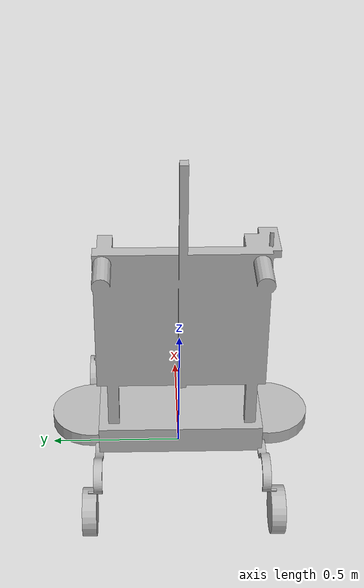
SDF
<?xml version="1.0" ?>
<sdf version="1.6">
  <model name="wheelchair_with_lidar">
    <pose>0 0 0.1 0 0 0</pose>
    <static>false</static>

    <!-- Main body of the wheelchair -->
    <link name="Mainbody">
      <pose>0 0 0 0 0 0</pose>
      <inertial>
        <mass>1</mass>
        <inertia>
          <ixx>0.1</ixx> <iyy>0.1</iyy> <izz>0.1</izz>
          <ixy>0.0</ixy> <ixz>0.0</ixz> <iyz>0.0</iyz>
        </inertia>
      </inertial>
      <collision name="collision">
        <geometry>
          <mesh>
            <uri>model://wheelchair/meshes/Wheelchair.stl</uri>
            <scale>1 1 1</scale>
          </mesh>
        </geometry>
      </collision>
      <visual name="visual">
        <geometry>
          <mesh>
            <uri>model://wheelchair/meshes/Wheelchair.stl</uri>
            <scale>1 1 1</scale>
          </mesh>
        </geometry>
      </visual>
    </link>

    <!-- LIDAR sensor on top of the wheelchair -->
    <link name="lidar_link">
      <pose>0 0 1.2 0 0 0</pose> <!-- Positioning the LIDAR on top -->
      <sensor type="ray" name="lidar_sensor">
        <pose>0 0 0.1 0 0 0</pose>
        <visualize>true</visualize>
        <ray>
          <scan>
            <horizontal>
              <samples>640</samples>
              <resolution>1</resolution>
              <min_angle>-0.5</min_angle>
              <max_angle>0.5</max_angle>
            </horizontal>
          </scan>
          <range>
            <min>0.1</min>
            <max>30.0</max>
            <resolution>0.01</resolution>
          </range>
        </ray>

        <!-- Plugin de ROS para publicar los datos del láser -->
        <plugin name="gazebo_ros_ray_sensor" filename="libgazebo_ros_ray_sensor.so">
          <ros>
            <!-- Publica los datos del láser en el tópico /scan -->
            <remapping>~/out:=/scan</remapping>
          </ros>
          <!-- Frame del sensor -->
          <frameName>lidar_link</frameName>
        </plugin>
      </sensor>
    </link>
    <joint name="lidar_joint" type="fixed">
      <parent>Mainbody</parent>
      <child>lidar_link</child>
    </joint>

    <!-- Left wheel -->
    <link name="left_main_wheel">
      <pose>-0.091 -0.33 0.109 0 0 0</pose>
      <collision name="collision">
        <geometry>
          <cylinder>
            <radius>0.155</radius>
            <length>0.05</length>
          </cylinder>
        </geometry>
      </collision>
      <visual name="visual">
        <geometry>
          <cylinder>
            <radius>0.155</radius>
            <length>0.05</length>
          </cylinder>
        </geometry>
      </visual>
    </link>

    <joint type="revolute" name="left_wheel_joint">
      <parent>Mainbody</parent>
      <child>left_main_wheel</child>
      <axis>
        <xyz>0 0 1</xyz>
      </axis>
    </joint>

    <!-- Right wheel -->
    <link name="right_main_wheel">
      <pose>-0.091 0.33 0.109 0 0 0</pose>
      <collision name="collision">
        <geometry>
          <cylinder>
            <radius>0.155</radius>
            <length>0.05</length>
          </cylinder>
        </geometry>
      </collision>
      <visual name="visual">
        <geometry>
          <cylinder>
            <radius>0.155</radius>
            <length>0.05</length>
          </cylinder>
        </geometry>
      </visual>
    </link>

    <joint type="revolute" name="right_wheel_joint">
      <parent>Mainbody</parent>
      <child>right_main_wheel</child>
      <axis>
        <xyz>0 0 1</xyz>
      </axis>
    </joint>

    <!-- Differential Drive Plugin -->
    <plugin name="diff_drive_controller" filename="libgazebo_ros_diff_drive.so">
      <ros>
        <namespace>/wheelchair</namespace>
        <remapping>cmd_vel:=/wheelchair/cmd_vel</remapping>
      </ros>
      <left_joint>left_wheel_joint</left_joint>
      <right_joint>right_wheel_joint</right_joint>
      <wheel_separation>0.66</wheel_separation>
      <wheel_radius>0.155</wheel_radius>
      <update_rate>100</update_rate>
      <robot_base_frame>base_link</robot_base_frame>
    </plugin>

    <!-- Left front wheel -->
    <link name="left_front_wheel">
      <pose>0.245 -0.33 0.039 0 1.57 1.57</pose>
      <collision name="collision">
        <geometry>
          <cylinder>
            <radius>0.085</radius>
            <length>0.05</length>
          </cylinder>
        </geometry>
      </collision>
      <visual name="visual">
        <geometry>
          <cylinder>
            <radius>0.085</radius>
            <length>0.05</length>
          </cylinder>
        </geometry>
      </visual>
    </link>
    <joint type="revolute" name="left_front_wheel_joint">
      <parent>Mainbody</parent>
      <child>left_front_wheel</child>
      <axis>
        <xyz>0 0 1</xyz>
      </axis>
    </joint>

    <!-- Right front wheel -->
    <link name="right_front_wheel">
      <pose>0.245 0.33 0.039 0 1.57 1.57</pose>
      <collision name="collision">
        <geometry>
          <cylinder>
            <radius>0.085</radius>
            <length>0.05</length>
          </cylinder>
        </geometry>
      </collision>
      <visual name="visual">
        <geometry>
          <cylinder>
            <radius>0.085</radius>
            <length>0.05</length>
          </cylinder>
        </geometry>
      </visual>
    </link>
    <joint type="revolute" name="right_front_wheel_joint">
      <parent>Mainbody</parent>
      <child>right_front_wheel</child>
      <axis>
        <xyz>0 0 -1</xyz>
      </axis>
    </joint>

    <!-- Left rear wheel -->
    <link name="left_rear_wheel">
      <pose>-0.548 -0.33 0.039 0 1.57 1.57</pose>
      <collision name="collision">
        <geometry>
          <cylinder>
            <radius>0.085</radius>
            <length>0.05</length>
          </cylinder>
        </geometry>
      </collision>
      <visual name="visual">
        <geometry>
          <cylinder>
            <radius>0.085</radius>
            <length>0.05</length>
          </cylinder>
        </geometry>
      </visual>
    </link>
    <joint type="revolute" name="left_rear_wheel_joint">
      <parent>Mainbody</parent>
      <child>left_rear_wheel</child>
      <axis>
        <xyz>0 0 1</xyz>
      </axis>
    </joint>

    <!-- Right rear wheel -->
    <link name="right_rear_wheel">
      <pose>-0.548 0.33 0.039 0 1.57 1.57</pose>
      <collision name="collision">
        <geometry>
          <cylinder>
            <radius>0.085</radius>
            <length>0.05</length>
          </cylinder>
        </geometry>
      </collision>
      <visual name="visual">
        <geometry>
          <cylinder>
            <radius>0.085</radius>
            <length>0.05</length>
          </cylinder>
        </geometry>
      </visual>
    </link>
    <joint type="revolute" name="right_rear_wheel_joint">
      <parent>Mainbody</parent>
      <child>right_rear_wheel</child>
      <axis>
        <xyz>0 0 -1</xyz>
      </axis>
    </joint>

    <plugin name="ros2_control" filename="libgazebo_ros2_control.so">
      <robot_namespace>/</robot_namespace>
      <robot_description>robot_description</robot_description>
      <legacyModeNS>false</legacyModeNS>
    </plugin>

    <!-- Agregar el plugin para control diferencial -->
    <plugin name="diff_drive_controller" filename="libgazebo_ros_diff_drive.so">
      <ros>
        <namespace>/</namespace>
        <remapping>odom:=/odom</remapping>
      </ros>
      <update_rate>50</update_rate>
      <left_joint>left_wheel_joint</left_joint>
      <right_joint>right_wheel_joint</right_joint>
      <wheel_separation>0.5</wheel_separation>
      <wheel_radius>0.15</wheel_radius>
      <odom_frame>odom</odom_frame>
      <base_frame>base_link</base_frame>
      <enable_odom_tf>true</enable_odom_tf>
    </plugin>

  </model>
</sdf>
